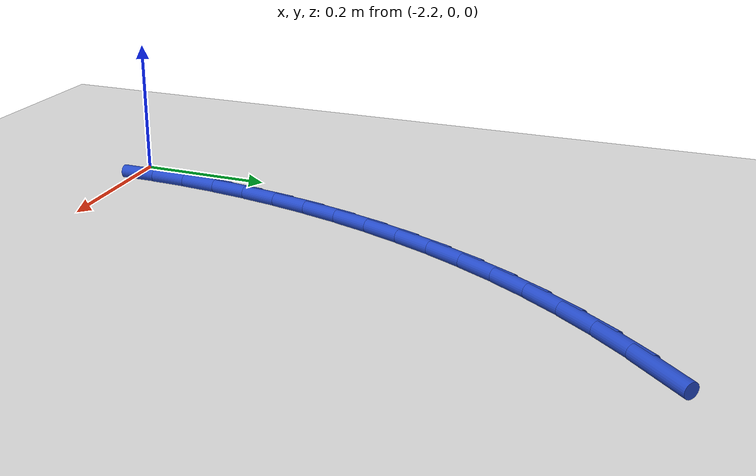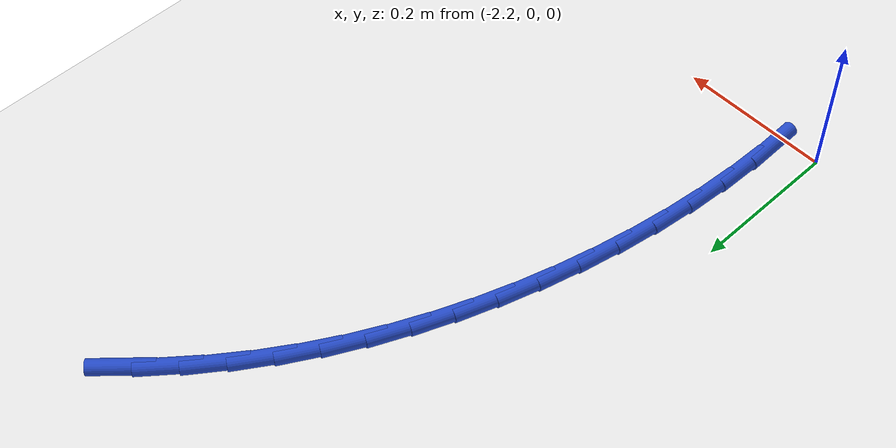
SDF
<sdf version="1.6">
 <world name="default">
  <model name="ground_plane">
   <static>1</static>
   <link name="link">
    <collision name="collision">
     <geometry><plane><normal>0 0 1</normal><size>100 100</size></plane></geometry>
     <surface><friction><ode><mu>100</mu><mu2>50</mu2></ode></friction></surface>
    </collision>
    <visual name="visual">
     <cast_shadows>0</cast_shadows>
     <geometry><plane><normal>0 0 1</normal><size>100 100</size></plane></geometry>
     <material>
      <script><uri>file://media/materials/scripts/gazebo.material</uri><name>Gazebo/WhiteGlow</name></script>
     </material>
    </visual>
   </link>
  </model>
  <model name="line">
   <link name="link_48">
    <pose>-1.849722321383472 0.8012701418425668 0.01 0 1.57 0.8200582923128543</pose>
    <collision name="collision">
     <geometry><cylinder><radius>0.01</radius><length>0.08</length></cylinder></geometry>
    </collision>
    <visual name="visual">
     <material>
      <script><name>Gazebo/Blue</name><uri>file://media/materials/scripts/gazebo.material</uri></script>
     </material>
     <geometry><cylinder><radius>0.01</radius><length>0.08</length></cylinder></geometry>
    </visual>
   </link>
   <link name="link_49">
    <pose>-1.8856597892762863 0.7627509630707319 0.01 0 1.57 0.8760053019373123</pose>
    <collision name="collision">
     <geometry><cylinder><radius>0.01</radius><length>0.08</length></cylinder></geometry>
    </collision>
    <visual name="visual">
     <material>
      <script><name>Gazebo/Blue</name><uri>file://media/materials/scripts/gazebo.material</uri></script>
     </material>
     <geometry><cylinder><radius>0.01</radius><length>0.08</length></cylinder></geometry>
    </visual>
   </link>
   <link name="link_50">
    <pose>-1.9192612990124538 0.72243347585413 0.01 0 1.57 0.9324405146587579</pose>
    <collision name="collision">
     <geometry><cylinder><radius>0.01</radius><length>0.08</length></cylinder></geometry>
    </collision>
    <visual name="visual">
     <material>
      <script><name>Gazebo/Blue</name><uri>file://media/materials/scripts/gazebo.material</uri></script>
     </material>
     <geometry><cylinder><radius>0.01</radius><length>0.08</length></cylinder></geometry>
    </visual>
   </link>
   <link name="link_51">
    <pose>-1.9503796479226565 0.6804945089838339 0.01 0 1.57 0.9883798089075645</pose>
    <collision name="collision">
     <geometry><cylinder><radius>0.01</radius><length>0.08</length></cylinder></geometry>
    </collision>
    <visual name="visual">
     <material>
      <script><name>Gazebo/Blue</name><uri>file://media/materials/scripts/gazebo.material</uri></script>
     </material>
     <geometry><cylinder><radius>0.01</radius><length>0.08</length></cylinder></geometry>
    </visual>
   </link>
   <link name="link_52">
    <pose>-1.9789975026280375 0.637043780450773 0.01 0 1.57 1.0426859814338119</pose>
    <collision name="collision">
     <geometry><cylinder><radius>0.01</radius><length>0.08</length></cylinder></geometry>
    </collision>
    <visual name="visual">
     <material>
      <script><name>Gazebo/Blue</name><uri>file://media/materials/scripts/gazebo.material</uri></script>
     </material>
     <geometry><cylinder><radius>0.01</radius><length>0.08</length></cylinder></geometry>
    </visual>
   </link>
   <link name="link_53">
    <pose>-2.005192368380614 0.5921419997668127 0.01 0 1.57 1.0950411906345385</pose>
    <collision name="collision">
     <geometry><cylinder><radius>0.01</radius><length>0.08</length></cylinder></geometry>
    </collision>
    <visual name="visual">
     <material>
      <script><name>Gazebo/Blue</name><uri>file://media/materials/scripts/gazebo.material</uri></script>
     </material>
     <geometry><cylinder><radius>0.01</radius><length>0.08</length></cylinder></geometry>
    </visual>
   </link>
   <link name="link_54">
    <pose>-2.029043910986091 0.5458487599636522 0.01 0 1.57 1.1452115292248655</pose>
    <collision name="collision">
     <geometry><cylinder><radius>0.01</radius><length>0.08</length></cylinder></geometry>
    </collision>
    <visual name="visual">
     <material>
      <script><name>Gazebo/Blue</name><uri>file://media/materials/scripts/gazebo.material</uri></script>
     </material>
     <geometry><cylinder><radius>0.01</radius><length>0.08</length></cylinder></geometry>
    </visual>
   </link>
   <link name="link_55">
    <pose>-2.050631796250177 0.4982236540729928 0.01 0 1.57 1.1930266311812336</pose>
    <collision name="collision">
     <geometry><cylinder><radius>0.01</radius><length>0.08</length></cylinder></geometry>
    </collision>
    <visual name="visual">
     <material>
      <script><name>Gazebo/Blue</name><uri>file://media/materials/scripts/gazebo.material</uri></script>
     </material>
     <geometry><cylinder><radius>0.01</radius><length>0.08</length></cylinder></geometry>
    </visual>
   </link>
   <link name="link_56">
    <pose>-2.0700356899785763 0.449326275126535 0.01 0 1.57 1.2383759646671015</pose>
    <collision name="collision">
     <geometry><cylinder><radius>0.01</radius><length>0.08</length></cylinder></geometry>
    </collision>
    <visual name="visual">
     <material>
      <script><name>Gazebo/Blue</name><uri>file://media/materials/scripts/gazebo.material</uri></script>
     </material>
     <geometry><cylinder><radius>0.01</radius><length>0.08</length></cylinder></geometry>
    </visual>
   </link>
   <link name="link_57">
    <pose>-2.0873352579769966 0.39921621615597885 0.01 0 1.57 1.2814651246583941</pose>
    <collision name="collision">
     <geometry><cylinder><radius>0.01</radius><length>0.08</length></cylinder></geometry>
    </collision>
    <visual name="visual">
     <material>
      <script><name>Gazebo/Blue</name><uri>file://media/materials/scripts/gazebo.material</uri></script>
     </material>
     <geometry><cylinder><radius>0.01</radius><length>0.08</length></cylinder></geometry>
    </visual>
   </link>
   <link name="link_58">
    <pose>-2.1025900442111163 0.34797141748449634 0.01 0 1.57 1.3237057438244364</pose>
    <collision name="collision">
     <geometry><cylinder><radius>0.01</radius><length>0.08</length></cylinder></geometry>
    </collision>
    <visual name="visual">
     <material>
      <script><name>Gazebo/Blue</name><uri>file://media/materials/scripts/gazebo.material</uri></script>
     </material>
     <geometry><cylinder><radius>0.01</radius><length>0.08</length></cylinder></geometry>
    </visual>
   </link>
   <link name="link_59">
    <pose>-2.1157599480014686 0.29576067640189674 0.01 0 1.57 1.365822992697896</pose>
    <collision name="collision">
     <geometry><cylinder><radius>0.01</radius><length>0.08</length></cylinder></geometry>
    </collision>
    <visual name="visual">
     <material>
      <script><name>Gazebo/Blue</name><uri>file://media/materials/scripts/gazebo.material</uri></script>
     </material>
     <geometry><cylinder><radius>0.01</radius><length>0.08</length></cylinder></geometry>
    </visual>
   </link>
   <link name="link_60">
    <pose>-2.1267740801810007 0.24278086344352515 0.01 0 1.57 1.408153650717583</pose>
    <collision name="collision">
     <geometry><cylinder><radius>0.01</radius><length>0.08</length></cylinder></geometry>
    </collision>
    <visual name="visual">
     <material>
      <script><name>Gazebo/Blue</name><uri>file://media/materials/scripts/gazebo.material</uri></script>
     </material>
     <geometry><cylinder><radius>0.01</radius><length>0.08</length></cylinder></geometry>
    </visual>
   </link>
   <link name="link_61">
    <pose>-2.1355615426149925 0.18922885732153388 0.01 0 1.57 1.4510271081675008</pose>
    <collision name="collision">
     <geometry><cylinder><radius>0.01</radius><length>0.08</length></cylinder></geometry>
    </collision>
    <visual name="visual">
     <material>
      <script><name>Gazebo/Blue</name><uri>file://media/materials/scripts/gazebo.material</uri></script>
     </material>
     <geometry><cylinder><radius>0.01</radius><length>0.08</length></cylinder></geometry>
    </visual>
   </link>
   <link name="link_62">
    <pose>-2.1420514371687216 0.13530153674807513 0.01 0 1.57 1.4947695775715932</pose>
    <collision name="collision">
     <geometry><cylinder><radius>0.01</radius><length>0.08</length></cylinder></geometry>
    </collision>
    <visual name="visual">
     <material>
      <script><name>Gazebo/Blue</name><uri>file://media/materials/scripts/gazebo.material</uri></script>
     </material>
     <geometry><cylinder><radius>0.01</radius><length>0.08</length></cylinder></geometry>
    </visual>
   </link>
   <link name="link_63">
    <pose>-2.146172865707468 0.08119578043530198 0.01 0 1.57 1.5397072907637486</pose>
    <collision name="collision">
     <geometry><cylinder><radius>0.01</radius><length>0.08</length></cylinder></geometry>
    </collision>
    <visual name="visual">
     <material>
      <script><name>Gazebo/Blue</name><uri>file://media/materials/scripts/gazebo.material</uri></script>
     </material>
     <geometry><cylinder><radius>0.01</radius><length>0.08</length></cylinder></geometry>
    </visual>
   </link>
   <link name="link_64">
    <pose>-2.14785493009651 0.0271084670953676 0.01 0 1.57 -1.5554240965687607</pose>
    <collision name="collision">
     <geometry><cylinder><radius>0.01</radius><length>0.08</length></cylinder></geometry>
    </collision>
    <visual name="visual">
     <material>
      <script><name>Gazebo/Blue</name><uri>file://media/materials/scripts/gazebo.material</uri></script>
     </material>
     <geometry><cylinder><radius>0.01</radius><length>0.08</length></cylinder></geometry>
    </visual>
   </link>
  </model>
 </world>
</sdf>
